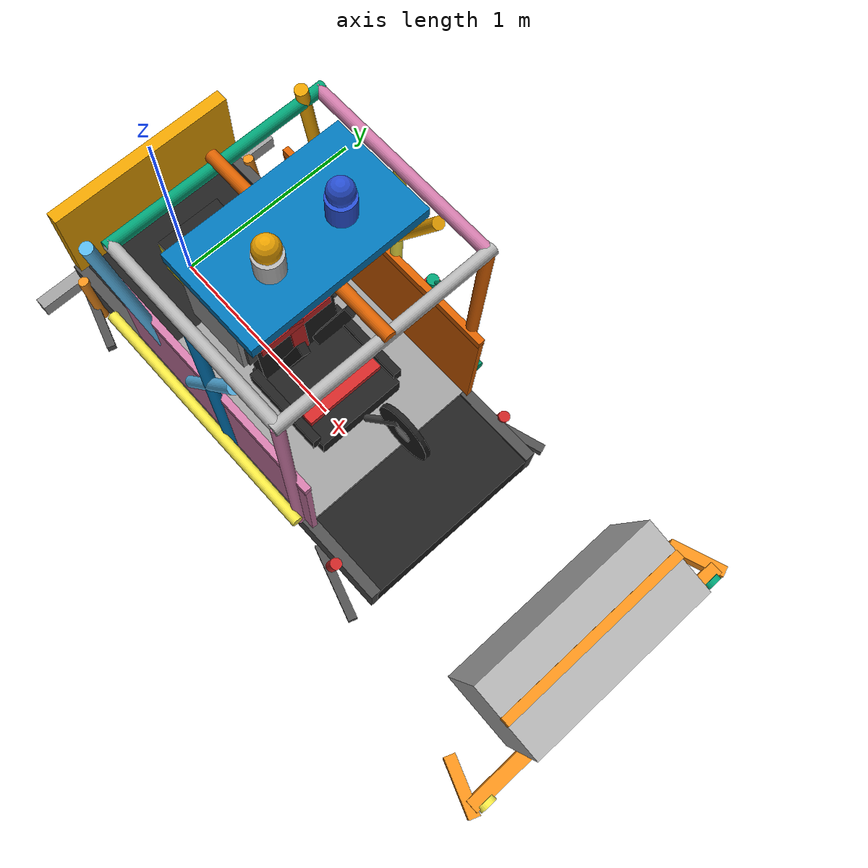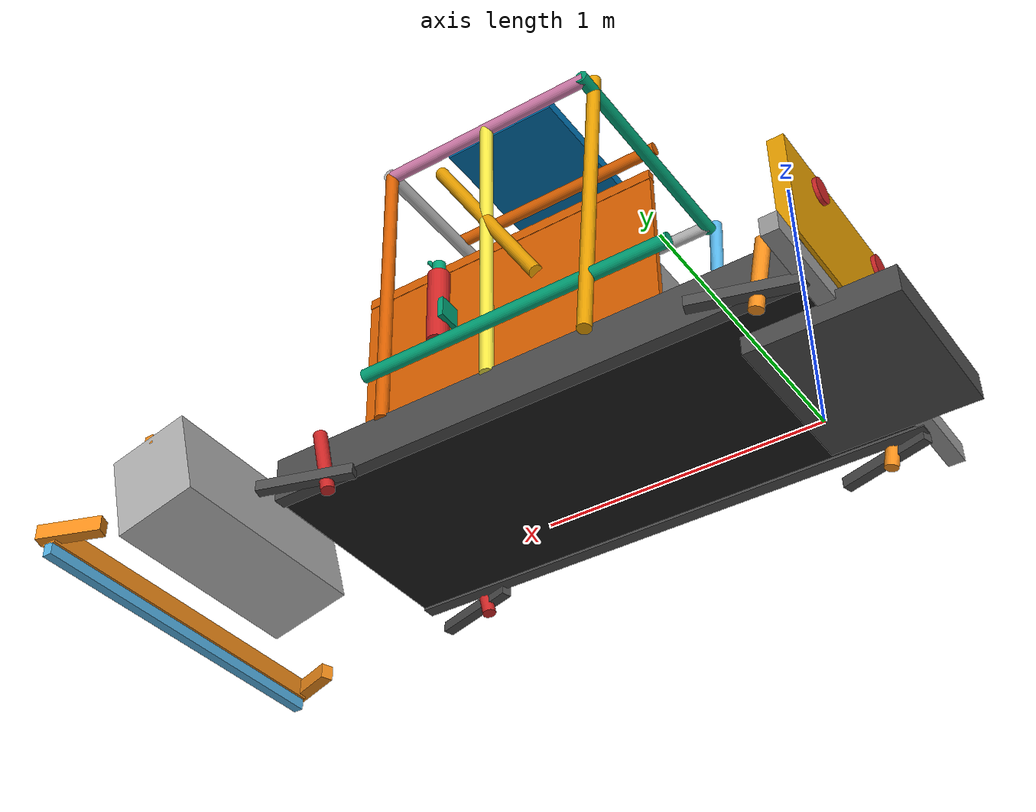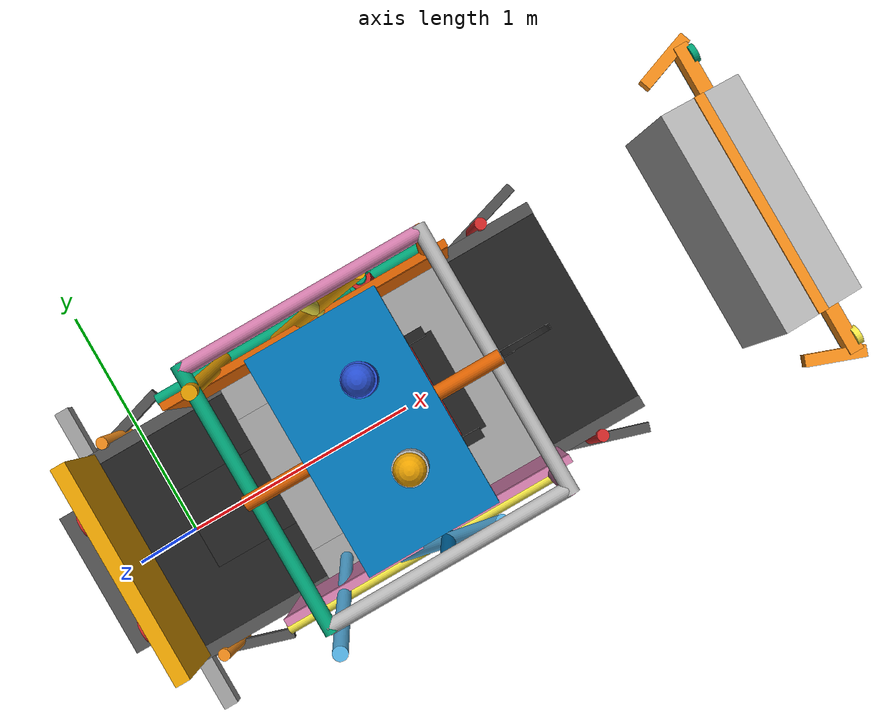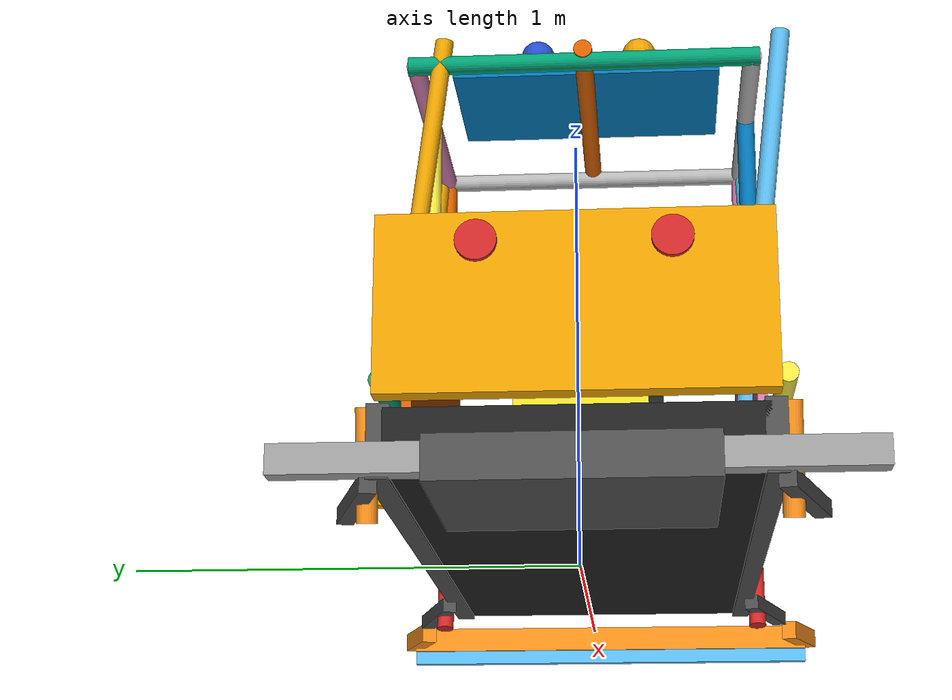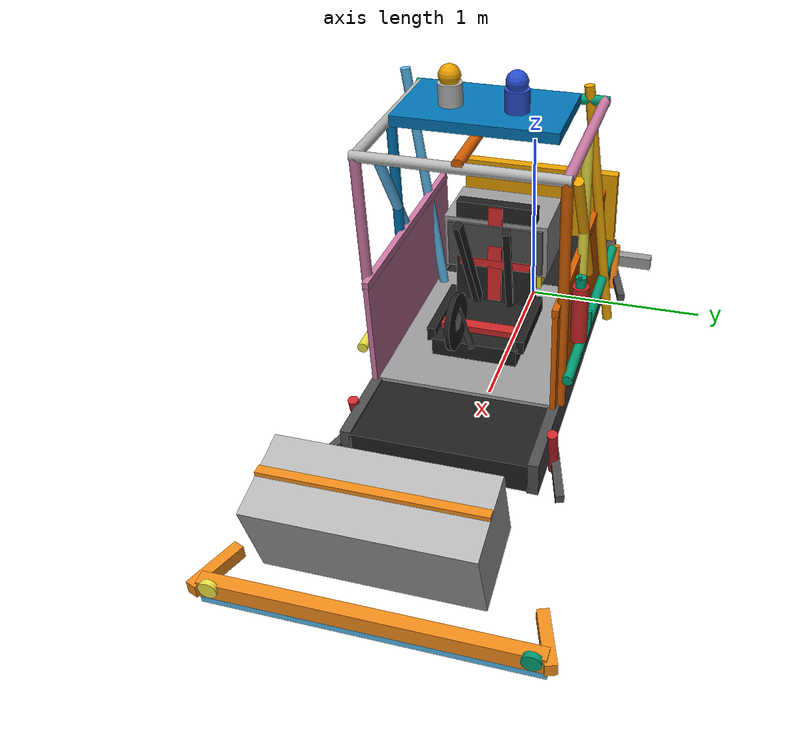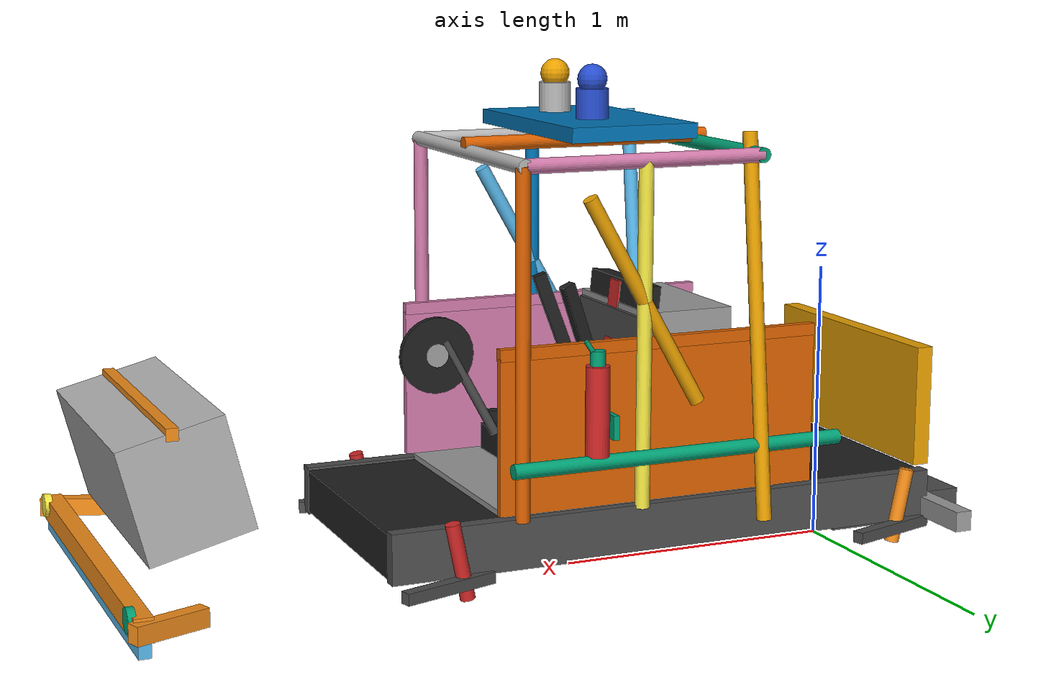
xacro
<?xml version="1.0"?>
<robot xmlns:xacro="http://www.ros.org/wiki/xacro" name="abaja_chassis">

  <!-- ======================================================================
    XACRO PROPERTIES
  ====================================================================== -->
  <xacro:property name="chassis_length" value="2.0"/>
  <xacro:property name="chassis_width"  value="0.85"/>
  <xacro:property name="chassis_height" value="0.15"/>
  <xacro:property name="chassis_mass"   value="80.0"/>
  <xacro:property name="ground_clearance" value="0.25"/>

  <xacro:property name="wheelbase"   value="1.65"/>
  <xacro:property name="track_width" value="1.25"/>

  <!-- Roll cage -->
  <xacro:property name="cage_tube_radius" value="0.025"/>
  <xacro:property name="cage_height"      value="1.15"/>

  <!-- Cockpit offset -->
  <xacro:property name="cockpit_offset_x" value="0.1"/>

  <!-- ======================================================================
    INERTIA MACROS
  ====================================================================== -->
  <xacro:macro name="box_inertia" params="mass x_dim y_dim z_dim">
    <inertial>
      <mass value="${mass}"/>
      <origin xyz="0 0 0" rpy="0 0 0"/>
      <inertia
        ixx="${(1.0/12.0) * mass * (y_dim*y_dim + z_dim*z_dim)}"
        ixy="0.0" ixz="0.0"
        iyy="${(1.0/12.0) * mass * (x_dim*x_dim + z_dim*z_dim)}"
        iyz="0.0"
        izz="${(1.0/12.0) * mass * (x_dim*x_dim + y_dim*y_dim)}"/>
    </inertial>
  </xacro:macro>

  <xacro:macro name="cylinder_inertia" params="mass radius length">
    <inertial>
      <mass value="${mass}"/>
      <origin xyz="0 0 0" rpy="0 0 0"/>
      <inertia
        ixx="${(1.0/12.0) * mass * (3*radius*radius + length*length)}"
        ixy="0.0" ixz="0.0"
        iyy="${(1.0/12.0) * mass * (3*radius*radius + length*length)}"
        iyz="0.0"
        izz="${(1.0/2.0) * mass * radius * radius}"/>
    </inertial>
  </xacro:macro>

  <xacro:macro name="sphere_inertia" params="mass radius">
    <inertial>
      <mass value="${mass}"/>
      <origin xyz="0 0 0" rpy="0 0 0"/>
      <inertia
        ixx="${(2.0/5.0) * mass * radius * radius}"
        ixy="0.0" ixz="0.0"
        iyy="${(2.0/5.0) * mass * radius * radius}"
        iyz="0.0"
        izz="${(2.0/5.0) * mass * radius * radius}"/>
    </inertial>
  </xacro:macro>

  <xacro:macro name="cage_tube" params="link_name tube_len tube_mass parent_link jnt_x jnt_y jnt_z jnt_r jnt_p jnt_yaw vis_r vis_p vis_yaw">
    <link name="${link_name}">
      <visual>
        <origin xyz="0 0 0" rpy="${vis_r} ${vis_p} ${vis_yaw}"/>
        <geometry><cylinder radius="${cage_tube_radius}" length="${tube_len}"/></geometry>
        <material name="Steel"/>
      </visual>
      <collision>
        <origin xyz="0 0 0" rpy="${vis_r} ${vis_p} ${vis_yaw}"/>
        <geometry><cylinder radius="${cage_tube_radius}" length="${tube_len}"/></geometry>
      </collision>
      <xacro:cylinder_inertia mass="${tube_mass}" radius="${cage_tube_radius}" length="${tube_len}"/>
    </link>
    <joint name="${link_name}_joint" type="fixed">
      <parent link="${parent_link}"/>
      <child  link="${link_name}"/>
      <origin xyz="${jnt_x} ${jnt_y} ${jnt_z}" rpy="${jnt_r} ${jnt_p} ${jnt_yaw}"/>
    </joint>
  </xacro:macro>

  <link name="dummy_root">
    <!-- Massless root link (KDL requirement) -->
  </link>

  <joint name="dummy_to_base" type="fixed">
    <parent link="dummy_root"/>
    <child  link="base_link"/>
    <origin xyz="0 0 0" rpy="0 0 0"/>
  </joint>

  <link name="base_link">
    <inertial>
      <mass value="0.001"/>
      <origin xyz="0 0 0" rpy="0 0 0"/>
      <inertia ixx="0.001" ixy="0" ixz="0" iyy="0.001" iyz="0" izz="0.001"/>
    </inertial>
  </link>

  <link name="base_footprint">
    <inertial>
      <mass value="0.001"/>
      <origin xyz="0 0 0" rpy="0 0 0"/>
      <inertia ixx="0.001" ixy="0" ixz="0" iyy="0.001" iyz="0" izz="0.001"/>
    </inertial>
  </link>

  <joint name="base_footprint_joint" type="fixed">
    <parent link="base_link"/>
    <child  link="base_footprint"/>
    <origin xyz="0 0 0" rpy="0 0 0"/>
  </joint>

  <link name="chassis_link">
    <!-- Main lower chassis tube frame (longitudinal rail) -->
    <visual>
      <origin xyz="${wheelbase/2} 0 0" rpy="0 0 0"/>
      <geometry><box size="${chassis_length} ${chassis_width} ${chassis_height}"/></geometry>
      <material name="Black"/>
    </visual>
    <!-- Left chassis rail (visual highlight) -->
    <visual>
      <origin xyz="${wheelbase/2} ${chassis_width/2 + 0.01} 0" rpy="0 0 0"/>
      <geometry><box size="${chassis_length} 0.05 ${chassis_height + 0.02}"/></geometry>
      <material name="DarkGrey"/>
    </visual>
    <!-- Right chassis rail -->
    <visual>
      <origin xyz="${wheelbase/2} -${chassis_width/2 + 0.01} 0" rpy="0 0 0"/>
      <geometry><box size="${chassis_length} 0.05 ${chassis_height + 0.02}"/></geometry>
      <material name="DarkGrey"/>
    </visual>
    <collision>
      <origin xyz="${wheelbase/2} 0 0" rpy="0 0 0"/>
      <geometry><box size="${chassis_length} ${chassis_width} ${chassis_height}"/></geometry>
    </collision>
    <xacro:box_inertia mass="${chassis_mass}" x_dim="${chassis_length}" y_dim="${chassis_width}" z_dim="${chassis_height}"/>
  </link>

  <joint name="base_to_chassis" type="fixed">
    <parent link="base_link"/>
    <child  link="chassis_link"/>
    <origin xyz="0 0 ${ground_clearance}" rpy="0 0 0"/>
  </joint>

  <!-- ======================================================================
    FLOOR PAN (preserved)
  ====================================================================== -->
  <link name="floor_pan_link">
    <visual>
      <origin xyz="0 0 0" rpy="0 0 0"/>
      <geometry><box size="1.0 ${chassis_width} 0.02"/></geometry>
      <material name="FloorGrey"/>
    </visual>
    <collision>
      <origin xyz="0 0 0" rpy="0 0 0"/>
      <geometry><box size="1.0 ${chassis_width} 0.02"/></geometry>
    </collision>
    <xacro:box_inertia mass="8.0" x_dim="1.0" y_dim="${chassis_width}" z_dim="0.02"/>
  </link>

  <joint name="chassis_to_floor" type="fixed">
    <parent link="chassis_link"/>
    <child  link="floor_pan_link"/>
    <origin xyz="${wheelbase/2 + 0.1} 0 ${chassis_height/2 + 0.01}" rpy="0 0 0"/>
  </joint>

  <!-- Left body panel - full cockpit height, team blue -->
  <link name="left_body_panel_link">
    <visual>
      <origin xyz="0 0 0" rpy="0 0 0"/>
      <geometry><box size="1.15 0.025 0.52"/></geometry>
      <material name="BodyPanel"/>
    </visual>
    <!-- Panel stripe accent (lighter blue strip along top) -->
    <visual>
      <origin xyz="0 0 0.27" rpy="0 0 0"/>
      <geometry><box size="1.15 0.03 0.04"/></geometry>
      <material name="FrontNose"/>
    </visual>
    <collision>
      <origin xyz="0 0 0" rpy="0 0 0"/>
      <geometry><box size="1.15 0.025 0.52"/></geometry>
    </collision>
    <xacro:box_inertia mass="3.5" x_dim="1.15" y_dim="0.025" z_dim="0.52"/>
  </link>

  <joint name="chassis_to_left_panel" type="fixed">
    <parent link="chassis_link"/>
    <child  link="left_body_panel_link"/>
    <origin xyz="${wheelbase/2 + 0.05} ${chassis_width/2 + 0.01} ${chassis_height/2 + 0.28}" rpy="0 0 0"/>
  </joint>

  <!-- Right body panel -->
  <link name="right_body_panel_link">
    <visual>
      <origin xyz="0 0 0" rpy="0 0 0"/>
      <geometry><box size="1.15 0.025 0.52"/></geometry>
      <material name="BodyPanel"/>
    </visual>
    <visual>
      <origin xyz="0 0 0.27" rpy="0 0 0"/>
      <geometry><box size="1.15 0.03 0.04"/></geometry>
      <material name="FrontNose"/>
    </visual>
    <collision>
      <origin xyz="0 0 0" rpy="0 0 0"/>
      <geometry><box size="1.15 0.025 0.52"/></geometry>
    </collision>
    <xacro:box_inertia mass="3.5" x_dim="1.15" y_dim="0.025" z_dim="0.52"/>
  </link>

  <joint name="chassis_to_right_panel" type="fixed">
    <parent link="chassis_link"/>
    <child  link="right_body_panel_link"/>
    <origin xyz="${wheelbase/2 + 0.05} -${chassis_width/2 + 0.01} ${chassis_height/2 + 0.28}" rpy="0 0 0"/>
  </joint>

  <link name="front_nose_link">
    <!-- Main angled nose plate -->
    <visual>
      <origin xyz="0 0 0" rpy="0 0.25 0"/>
      <geometry><box size="0.35 ${chassis_width + 0.05} 0.38"/></geometry>
      <material name="BodyPanel"/>
    </visual>
    <!-- Nose accent stripe (orange) -->
    <visual>
      <origin xyz="0.04 0 0.18" rpy="0 0 0"/>
      <geometry><box size="0.04 ${chassis_width + 0.05} 0.04"/></geometry>
      <material name="BumperOrange"/>
    </visual>
    <collision>
      <origin xyz="0 0 0" rpy="0 0.25 0"/>
      <geometry><box size="0.35 ${chassis_width + 0.05} 0.38"/></geometry>
    </collision>
    <xacro:box_inertia mass="2.0" x_dim="0.35" y_dim="${chassis_width + 0.05}" z_dim="0.38"/>
  </link>

  <joint name="chassis_to_front_nose" type="fixed">
    <parent link="chassis_link"/>
    <child  link="front_nose_link"/>
    <origin xyz="${wheelbase + 0.82} 0 ${chassis_height/2 + 0.22}" rpy="0 0 0"/>
  </joint>

  <!-- ======================================================================
    REAR BODY PANEL / REAR GUARD
  ====================================================================== -->
  <link name="rear_guard_link">
    <visual>
      <origin xyz="0 0 0" rpy="0 0 0"/>
      <geometry><box size="0.06 ${chassis_width + 0.05} 0.42"/></geometry>
      <material name="RearGuard"/>
    </visual>
    <collision>
      <origin xyz="0 0 0" rpy="0 0 0"/>
      <geometry><box size="0.06 ${chassis_width + 0.05} 0.42"/></geometry>
    </collision>
    <xacro:box_inertia mass="2.0" x_dim="0.06" y_dim="${chassis_width + 0.05}" z_dim="0.42"/>
  </link>

  <joint name="chassis_to_rear_guard" type="fixed">
    <parent link="chassis_link"/>
    <child  link="rear_guard_link"/>
    <origin xyz="-0.15 0 ${chassis_height/2 + 0.24}" rpy="0 0 0"/>
  </joint>

  <link name="front_bumper_link">
    <!-- Main bumper bar -->
    <visual>
      <origin xyz="0 0 0" rpy="0 0 0"/>
      <geometry><box size="0.06 ${track_width + 0.15} 0.08"/></geometry>
      <material name="BumperOrange"/>
    </visual>
    <!-- Left bumper horn -->
    <visual>
      <origin xyz="-0.08 ${track_width/2 + 0.05} 0" rpy="0 0 0.35"/>
      <geometry><box size="0.25 0.05 0.06"/></geometry>
      <material name="BumperOrange"/>
    </visual>
    <!-- Right bumper horn -->
    <visual>
      <origin xyz="-0.08 -${track_width/2 + 0.05} 0" rpy="0 0 -0.35"/>
      <geometry><box size="0.25 0.05 0.06"/></geometry>
      <material name="BumperOrange"/>
    </visual>
    <!-- Bumper skid plate (lower) -->
    <visual>
      <origin xyz="0 0 -0.06" rpy="0 0 0"/>
      <geometry><box size="0.04 ${track_width + 0.15} 0.05"/></geometry>
      <material name="Steel"/>
    </visual>
    <collision>
      <origin xyz="0 0 0" rpy="0 0 0"/>
      <geometry><box size="0.08 ${track_width + 0.15} 0.08"/></geometry>
    </collision>
    <xacro:box_inertia mass="3.0" x_dim="0.08" y_dim="${track_width + 0.15}" z_dim="0.08"/>
  </link>

  <joint name="chassis_to_front_bumper" type="fixed">
    <parent link="chassis_link"/>
    <child  link="front_bumper_link"/>
    <origin xyz="${wheelbase + 1.02} 0 ${-chassis_height/2 + 0.04}" rpy="0 0 0"/>
  </joint>

  <!-- Front indicator lights (white, mounted on bumper corners) -->
  <link name="front_left_light_link">
    <visual>
      <origin xyz="0 0 0" rpy="0 1.5708 0"/>
      <geometry><cylinder radius="0.04" length="0.025"/></geometry>
      <material name="FrontLight"/>
    </visual>
    <collision>
      <origin xyz="0 0 0" rpy="0 1.5708 0"/>
      <geometry><cylinder radius="0.04" length="0.025"/></geometry>
    </collision>
    <xacro:cylinder_inertia mass="0.05" radius="0.04" length="0.025"/>
  </link>

  <joint name="bumper_to_fl_light" type="fixed">
    <parent link="front_bumper_link"/>
    <child  link="front_left_light_link"/>
    <origin xyz="0.03 ${track_width/2 + 0.02} 0.02" rpy="0 0 0"/>
  </joint>

  <link name="front_right_light_link">
    <visual>
      <origin xyz="0 0 0" rpy="0 1.5708 0"/>
      <geometry><cylinder radius="0.04" length="0.025"/></geometry>
      <material name="FrontLight"/>
    </visual>
    <collision>
      <origin xyz="0 0 0" rpy="0 1.5708 0"/>
      <geometry><cylinder radius="0.04" length="0.025"/></geometry>
    </collision>
    <xacro:cylinder_inertia mass="0.05" radius="0.04" length="0.025"/>
  </link>

  <joint name="bumper_to_fr_light" type="fixed">
    <parent link="front_bumper_link"/>
    <child  link="front_right_light_link"/>
    <origin xyz="0.03 -${track_width/2 + 0.02} 0.02" rpy="0 0 0"/>
  </joint>

  <!-- ======================================================================
    REAR BUMPER
  ====================================================================== -->
  <link name="rear_bumper_link">
    <!-- Main rear bumper bar -->
    <visual>
      <origin xyz="0 0 0" rpy="0 0 0"/>
      <geometry><box size="0.06 ${track_width + 0.1} 0.07"/></geometry>
      <material name="BumperGrey"/>
    </visual>
    <!-- Rear tow hook visual -->
    <visual>
      <origin xyz="-0.05 0 -0.04" rpy="0 0 0"/>
      <geometry><box size="0.08 0.04 0.04"/></geometry>
      <material name="Steel"/>
    </visual>
    <collision>
      <origin xyz="0 0 0" rpy="0 0 0"/>
      <geometry><box size="0.06 ${track_width + 0.1} 0.07"/></geometry>
    </collision>
    <xacro:box_inertia mass="2.5" x_dim="0.06" y_dim="${track_width + 0.1}" z_dim="0.07"/>
  </link>

  <joint name="chassis_to_rear_bumper" type="fixed">
    <parent link="chassis_link"/>
    <child  link="rear_bumper_link"/>
    <origin xyz="-0.18 0 ${-chassis_height/2 + 0.03}" rpy="0 0 0"/>
  </joint>

  <!-- ── FRONT HOOP ─────────────────────────────────────────── -->
  <!-- Front hoop: left pillar (cylinder, vertical) -->
  <xacro:cage_tube
    link_name="roll_cage_front_left_upright"
    tube_len="${cage_height}"
    tube_mass="2.0"
    parent_link="chassis_link"
    jnt_x="${wheelbase/2 + 0.55}" jnt_y="${chassis_width/2 + 0.03}" jnt_z="${chassis_height/2 + cage_height/2}"
    jnt_r="0" jnt_p="0" jnt_yaw="0"
    vis_r="0" vis_p="0" vis_yaw="0"/>

  <!-- Front hoop: right pillar -->
  <xacro:cage_tube
    link_name="roll_cage_front_right_upright"
    tube_len="${cage_height}"
    tube_mass="2.0"
    parent_link="chassis_link"
    jnt_x="${wheelbase/2 + 0.55}" jnt_y="-${chassis_width/2 + 0.03}" jnt_z="${chassis_height/2 + cage_height/2}"
    jnt_r="0" jnt_p="0" jnt_yaw="0"
    vis_r="0" vis_p="0" vis_yaw="0"/>

  <!-- Front hoop: top cross tube (horizontal, Y direction) -->
  <link name="roll_cage_front_hoop">
    <visual>
      <origin xyz="0 0 0" rpy="${pi/2} 0 0"/>
      <geometry><cylinder radius="${cage_tube_radius}" length="${chassis_width + 0.1}"/></geometry>
      <material name="Steel"/>
    </visual>
    <collision>
      <origin xyz="0 0 0" rpy="${pi/2} 0 0"/>
      <geometry><cylinder radius="${cage_tube_radius}" length="${chassis_width + 0.1}"/></geometry>
    </collision>
    <xacro:cylinder_inertia mass="1.5" radius="${cage_tube_radius}" length="${chassis_width + 0.1}"/>
  </link>
  <joint name="chassis_to_front_hoop" type="fixed">
    <parent link="chassis_link"/>
    <child  link="roll_cage_front_hoop"/>
    <origin xyz="${wheelbase/2 + 0.55} 0 ${chassis_height/2 + cage_height}" rpy="0 0 0"/>
  </joint>

  <!-- ── REAR HOOP ──────────────────────────────────────────── -->
  <!-- Rear hoop: left upright (with slight outward lean for BAJA style) -->
  <link name="roll_cage_left_rear_pillar">
    <visual>
      <origin xyz="0 0 0" rpy="0.12 0 0"/>
      <geometry><cylinder radius="${cage_tube_radius}" length="${cage_height + 0.15}"/></geometry>
      <material name="Steel"/>
    </visual>
    <collision>
      <origin xyz="0 0 0" rpy="0.12 0 0"/>
      <geometry><cylinder radius="${cage_tube_radius}" length="${cage_height + 0.15}"/></geometry>
    </collision>
    <xacro:cylinder_inertia mass="2.5" radius="${cage_tube_radius}" length="${cage_height + 0.15}"/>
  </link>
  <joint name="chassis_to_left_rear_pillar" type="fixed">
    <parent link="chassis_link"/>
    <child  link="roll_cage_left_rear_pillar"/>
    <origin xyz="${wheelbase/2 - 0.30} ${chassis_width/2 + 0.03} ${chassis_height/2 + cage_height/2}" rpy="0 0 0"/>
  </joint>

  <!-- Rear hoop: right upright -->
  <link name="roll_cage_right_rear_pillar">
    <visual>
      <origin xyz="0 0 0" rpy="0.12 0 0"/>
      <geometry><cylinder radius="${cage_tube_radius}" length="${cage_height + 0.15}"/></geometry>
      <material name="Steel"/>
    </visual>
    <collision>
      <origin xyz="0 0 0" rpy="0.12 0 0"/>
      <geometry><cylinder radius="${cage_tube_radius}" length="${cage_height + 0.15}"/></geometry>
    </collision>
    <xacro:cylinder_inertia mass="2.5" radius="${cage_tube_radius}" length="${cage_height + 0.15}"/>
  </link>
  <joint name="chassis_to_right_rear_pillar" type="fixed">
    <parent link="chassis_link"/>
    <child  link="roll_cage_right_rear_pillar"/>
    <origin xyz="${wheelbase/2 - 0.30} -${chassis_width/2 + 0.03} ${chassis_height/2 + cage_height/2}" rpy="0 0 0"/>
  </joint>

  <!-- Rear hoop: top cross bar -->
  <link name="roll_cage_rear_hoop">
    <visual>
      <origin xyz="0 0 0" rpy="${pi/2} 0 0"/>
      <geometry><cylinder radius="${cage_tube_radius}" length="${chassis_width + 0.1}"/></geometry>
      <material name="Steel"/>
    </visual>
    <collision>
      <origin xyz="0 0 0" rpy="${pi/2} 0 0"/>
      <geometry><cylinder radius="${cage_tube_radius}" length="${chassis_width + 0.1}"/></geometry>
    </collision>
    <xacro:cylinder_inertia mass="1.5" radius="${cage_tube_radius}" length="${chassis_width + 0.1}"/>
  </link>
  <joint name="chassis_to_rear_hoop" type="fixed">
    <parent link="chassis_link"/>
    <child  link="roll_cage_rear_hoop"/>
    <origin xyz="${wheelbase/2 - 0.30} 0 ${chassis_height/2 + cage_height}" rpy="0 0 0"/>
  </joint>

  <!-- ── A-PILLAR (front cage uprights connecting front hoop to chassis sides) -->
  <!-- Preserved names from original for Gazebo/abaja_buggy.urdf.xacro compatibility -->
  <link name="roll_cage_left_pillar">
    <visual>
      <origin xyz="0 0 0" rpy="0 0 0"/>
      <geometry><cylinder radius="${cage_tube_radius}" length="${cage_height}"/></geometry>
      <material name="Steel"/>
    </visual>
    <collision>
      <origin xyz="0 0 0" rpy="0 0 0"/>
      <geometry><cylinder radius="${cage_tube_radius}" length="${cage_height}"/></geometry>
    </collision>
    <xacro:cylinder_inertia mass="2.0" radius="${cage_tube_radius}" length="${cage_height}"/>
  </link>
  <joint name="chassis_to_left_pillar" type="fixed">
    <parent link="chassis_link"/>
    <child  link="roll_cage_left_pillar"/>
    <origin xyz="${wheelbase/2 + 0.12} ${chassis_width/2 + 0.03} ${chassis_height/2 + cage_height/2}" rpy="0 0 0"/>
  </joint>

  <link name="roll_cage_right_pillar">
    <visual>
      <origin xyz="0 0 0" rpy="0 0 0"/>
      <geometry><cylinder radius="${cage_tube_radius}" length="${cage_height}"/></geometry>
      <material name="Steel"/>
    </visual>
    <collision>
      <origin xyz="0 0 0" rpy="0 0 0"/>
      <geometry><cylinder radius="${cage_tube_radius}" length="${cage_height}"/></geometry>
    </collision>
    <xacro:cylinder_inertia mass="2.0" radius="${cage_tube_radius}" length="${cage_height}"/>
  </link>
  <joint name="chassis_to_right_pillar" type="fixed">
    <parent link="chassis_link"/>
    <child  link="roll_cage_right_pillar"/>
    <origin xyz="${wheelbase/2 + 0.12} -${chassis_width/2 + 0.03} ${chassis_height/2 + cage_height/2}" rpy="0 0 0"/>
  </joint>

  <!-- ── TOP CONNECTING BAR (front hoop to rear hoop, left and right) ── -->
  <link name="roll_cage_top_bar">
    <visual>
      <origin xyz="0 0 0" rpy="0 ${pi/2} 0"/>
      <geometry><cylinder radius="${cage_tube_radius}" length="0.90"/></geometry>
      <material name="Steel"/>
    </visual>
    <collision>
      <origin xyz="0 0 0" rpy="0 ${pi/2} 0"/>
      <geometry><cylinder radius="${cage_tube_radius}" length="0.90"/></geometry>
    </collision>
    <xacro:cylinder_inertia mass="1.5" radius="${cage_tube_radius}" length="0.90"/>
  </link>
  <joint name="chassis_to_top_bar" type="fixed">
    <parent link="chassis_link"/>
    <child  link="roll_cage_top_bar"/>
    <origin xyz="${wheelbase/2 + 0.12} 0 ${chassis_height/2 + cage_height + 0.025}" rpy="0 0 0"/>
  </joint>

  <!-- Top left longtudinal bar -->
  <link name="roll_cage_left_side_bar">
    <visual>
      <origin xyz="0 0 0" rpy="0 ${pi/2} 0"/>
      <geometry><cylinder radius="${cage_tube_radius}" length="0.85"/></geometry>
      <material name="Steel"/>
    </visual>
    <collision>
      <origin xyz="0 0 0" rpy="0 ${pi/2} 0"/>
      <geometry><cylinder radius="${cage_tube_radius}" length="0.85"/></geometry>
    </collision>
    <xacro:cylinder_inertia mass="1.5" radius="${cage_tube_radius}" length="0.85"/>
  </link>
  <joint name="chassis_to_left_side_bar" type="fixed">
    <parent link="chassis_link"/>
    <child  link="roll_cage_left_side_bar"/>
    <origin xyz="${wheelbase/2 + 0.12} ${chassis_width/2 + 0.03} ${chassis_height/2 + cage_height}" rpy="0 0 0"/>
  </joint>

  <!-- Top right longitudinal bar -->
  <link name="roll_cage_right_side_bar">
    <visual>
      <origin xyz="0 0 0" rpy="0 ${pi/2} 0"/>
      <geometry><cylinder radius="${cage_tube_radius}" length="0.85"/></geometry>
      <material name="Steel"/>
    </visual>
    <collision>
      <origin xyz="0 0 0" rpy="0 ${pi/2} 0"/>
      <geometry><cylinder radius="${cage_tube_radius}" length="0.85"/></geometry>
    </collision>
    <xacro:cylinder_inertia mass="1.5" radius="${cage_tube_radius}" length="0.85"/>
  </link>
  <joint name="chassis_to_right_side_bar" type="fixed">
    <parent link="chassis_link"/>
    <child  link="roll_cage_right_side_bar"/>
    <origin xyz="${wheelbase/2 + 0.12} -${chassis_width/2 + 0.03} ${chassis_height/2 + cage_height}" rpy="0 0 0"/>
  </joint>

  <!-- ── DIAGONAL BRACES (X-brace pattern at rear of roll cage) ── -->
  <xacro:cage_tube
    link_name="roll_cage_diag_left"
    tube_len="0.80"
    tube_mass="1.0"
    parent_link="chassis_link"
    jnt_x="${wheelbase/2 + 0.12}" jnt_y="${chassis_width/2 + 0.03}" jnt_z="${chassis_height/2 + cage_height * 0.60}"
    jnt_r="0" jnt_p="0" jnt_yaw="0"
    vis_r="0" vis_p="0.52" vis_yaw="0"/>

  <xacro:cage_tube
    link_name="roll_cage_diag_right"
    tube_len="0.80"
    tube_mass="1.0"
    parent_link="chassis_link"
    jnt_x="${wheelbase/2 + 0.12}" jnt_y="-${chassis_width/2 + 0.03}" jnt_z="${chassis_height/2 + cage_height * 0.60}"
    jnt_r="0" jnt_p="0" jnt_yaw="0"
    vis_r="0" vis_p="0.52" vis_yaw="0"/>

  <!-- ── SIDE PROTECTION BARS (low horizontal tube along body sides) ── -->
  <xacro:cage_tube
    link_name="side_protection_left"
    tube_len="1.20"
    tube_mass="2.0"
    parent_link="chassis_link"
    jnt_x="${wheelbase/2}" jnt_y="${chassis_width/2 + 0.07}" jnt_z="${chassis_height/2 + 0.18}"
    jnt_r="0" jnt_p="0" jnt_yaw="0"
    vis_r="0" vis_p="${pi/2}" vis_yaw="0"/>

  <xacro:cage_tube
    link_name="side_protection_right"
    tube_len="1.20"
    tube_mass="2.0"
    parent_link="chassis_link"
    jnt_x="${wheelbase/2}" jnt_y="-${chassis_width/2 + 0.07}" jnt_z="${chassis_height/2 + 0.18}"
    jnt_r="0" jnt_p="0" jnt_yaw="0"
    vis_r="0" vis_p="${pi/2}" vis_yaw="0"/>

  <!-- ======================================================================
    SENSOR MOUNT BAR (preserved name/joint)
  ====================================================================== -->
  <link name="sensor_mount_bar">
    <visual>
      <origin xyz="0 0 0" rpy="0 0 0"/>
      <geometry><box size="0.45 0.75 0.05"/></geometry>
      <material name="SensorBar"/>
    </visual>
    <!-- Mounting rail left -->
    <visual>
      <origin xyz="0 0.30 0" rpy="0 0 0"/>
      <geometry><box size="0.42 0.04 0.03"/></geometry>
      <material name="DarkGrey"/>
    </visual>
    <!-- Mounting rail right -->
    <visual>
      <origin xyz="0 -0.30 0" rpy="0 0 0"/>
      <geometry><box size="0.42 0.04 0.03"/></geometry>
      <material name="DarkGrey"/>
    </visual>
    <collision>
      <origin xyz="0 0 0" rpy="0 0 0"/>
      <geometry><box size="0.45 0.75 0.05"/></geometry>
    </collision>
    <xacro:box_inertia mass="2.0" x_dim="0.45" y_dim="0.75" z_dim="0.05"/>
  </link>

  <joint name="cage_to_sensor_bar" type="fixed">
    <parent link="chassis_link"/>
    <child  link="sensor_mount_bar"/>
    <origin xyz="${wheelbase/2 + 0.12} 0 ${chassis_height/2 + cage_height + 0.08}" rpy="0 0 0"/>
  </joint>

  <!-- ======================================================================
    BEACONS (preserved names and joints)
  ====================================================================== -->
  <!-- Blue ASAL beacon -->
  <link name="asal_beacon_link">
    <visual>
      <origin xyz="0 0 0" rpy="0 0 0"/>
      <geometry><cylinder radius="0.055" length="0.10"/></geometry>
      <material name="Blue"/>
    </visual>
    <collision>
      <origin xyz="0 0 0" rpy="0 0 0"/>
      <geometry><cylinder radius="0.055" length="0.10"/></geometry>
    </collision>
    <xacro:cylinder_inertia mass="0.3" radius="0.055" length="0.10"/>
  </link>

  <link name="asal_beacon_dome">
    <visual>
      <origin xyz="0 0 0" rpy="0 0 0"/>
      <geometry><sphere radius="0.050"/></geometry>
      <material name="Blue"/>
    </visual>
    <collision>
      <origin xyz="0 0 0" rpy="0 0 0"/>
      <geometry><sphere radius="0.050"/></geometry>
    </collision>
    <xacro:sphere_inertia mass="0.1" radius="0.050"/>
  </link>

  <joint name="sensor_bar_to_asal_beacon" type="fixed">
    <parent link="sensor_mount_bar"/>
    <child  link="asal_beacon_link"/>
    <origin xyz="0.05 0.15 0.08" rpy="0 0 0"/>
  </joint>

  <joint name="asal_beacon_to_dome" type="fixed">
    <parent link="asal_beacon_link"/>
    <child  link="asal_beacon_dome"/>
    <origin xyz="0 0 0.08" rpy="0 0 0"/>
  </joint>

  <!-- Orange warning beacon -->
  <link name="warning_beacon_link">
    <visual>
      <origin xyz="0 0 0" rpy="0 0 0"/>
      <geometry><cylinder radius="0.055" length="0.10"/></geometry>
      <material name="Amber"/>
    </visual>
    <collision>
      <origin xyz="0 0 0" rpy="0 0 0"/>
      <geometry><cylinder radius="0.055" length="0.10"/></geometry>
    </collision>
    <xacro:cylinder_inertia mass="0.3" radius="0.055" length="0.10"/>
  </link>

  <link name="warning_beacon_dome">
    <visual>
      <origin xyz="0 0 0" rpy="0 0 0"/>
      <geometry><sphere radius="0.050"/></geometry>
      <material name="Amber"/>
    </visual>
    <collision>
      <origin xyz="0 0 0" rpy="0 0 0"/>
      <geometry><sphere radius="0.050"/></geometry>
    </collision>
    <xacro:sphere_inertia mass="0.1" radius="0.050"/>
  </link>

  <joint name="sensor_bar_to_warning_beacon" type="fixed">
    <parent link="sensor_mount_bar"/>
    <child  link="warning_beacon_link"/>
    <origin xyz="0.05 -0.15 0.08" rpy="0 0 0"/>
  </joint>

  <joint name="warning_beacon_to_dome" type="fixed">
    <parent link="warning_beacon_link"/>
    <child  link="warning_beacon_dome"/>
    <origin xyz="0 0 0.08" rpy="0 0 0"/>
  </joint>

  <!-- ======================================================================
    SEAT - Preserved names
  ====================================================================== -->
  <link name="seat_link">
    <!-- Seat base cushion -->
    <visual>
      <origin xyz="0 0 0" rpy="0 0 0"/>
      <geometry><box size="0.45 0.42 0.09"/></geometry>
      <material name="SeatBlack"/>
    </visual>
    <!-- Seat side bolster left -->
    <visual>
      <origin xyz="0 0.22 0.05" rpy="0 0 0"/>
      <geometry><box size="0.40 0.04 0.07"/></geometry>
      <material name="SeatBlack"/>
    </visual>
    <!-- Seat side bolster right -->
    <visual>
      <origin xyz="0 -0.22 0.05" rpy="0 0 0"/>
      <geometry><box size="0.40 0.04 0.07"/></geometry>
      <material name="SeatBlack"/>
    </visual>
    <collision>
      <origin xyz="0 0 0" rpy="0 0 0"/>
      <geometry><box size="0.45 0.42 0.09"/></geometry>
    </collision>
    <xacro:box_inertia mass="3.0" x_dim="0.45" y_dim="0.42" z_dim="0.09"/>
  </link>

  <!-- Seat backrest -->
  <link name="seat_backrest_link">
    <!-- Main backrest -->
    <visual>
      <origin xyz="0 0 0" rpy="0 0 0"/>
      <geometry><box size="0.07 0.40 0.52"/></geometry>
      <material name="SeatBlack"/>
    </visual>
    <!-- Red harness vertical strap -->
    <visual>
      <origin xyz="0.02 0 0" rpy="0 0 0"/>
      <geometry><box size="0.045 0.07 0.50"/></geometry>
      <material name="SeatRed"/>
    </visual>
    <!-- Red harness horizontal strap -->
    <visual>
      <origin xyz="0.02 0 -0.05" rpy="0 0 0"/>
      <geometry><box size="0.045 0.36 0.04"/></geometry>
      <material name="SeatRed"/>
    </visual>
    <collision>
      <origin xyz="0 0 0" rpy="0 0 0"/>
      <geometry><box size="0.07 0.40 0.52"/></geometry>
    </collision>
    <xacro:box_inertia mass="2.0" x_dim="0.07" y_dim="0.40" z_dim="0.52"/>
  </link>

  <joint name="chassis_to_seat" type="fixed">
    <parent link="chassis_link"/>
    <child  link="seat_link"/>
    <origin xyz="${wheelbase/2 + 0.20} 0 ${chassis_height/2 + 0.12}" rpy="0 0 0"/>
  </joint>

  <joint name="seat_to_backrest" type="fixed">
    <parent link="seat_link"/>
    <child  link="seat_backrest_link"/>
    <origin xyz="-0.21 0 0.31" rpy="0 -0.10 0"/>
  </joint>

  <!-- ======================================================================
    STEERING COLUMN (preserved)
  ====================================================================== -->
  <link name="steering_column_link">
    <visual>
      <origin xyz="0 0 0" rpy="0 0.5 0"/>
      <geometry><cylinder radius="0.016" length="0.38"/></geometry>
      <material name="DarkGrey"/>
    </visual>
    <collision>
      <origin xyz="0 0 0" rpy="0 0.5 0"/>
      <geometry><cylinder radius="0.016" length="0.38"/></geometry>
    </collision>
    <xacro:cylinder_inertia mass="0.5" radius="0.016" length="0.38"/>
  </link>

  <link name="steering_wheel_link">
    <!-- Outer ring -->
    <visual>
      <origin xyz="0 0 0" rpy="${pi/2} 0 0"/>
      <geometry><cylinder radius="0.13" length="0.022"/></geometry>
      <material name="SteeringBlack"/>
    </visual>
    <!-- Centre hub -->
    <visual>
      <origin xyz="0 0 0" rpy="${pi/2} 0 0"/>
      <geometry><cylinder radius="0.040" length="0.024"/></geometry>
      <material name="Grey"/>
    </visual>
    <collision>
      <origin xyz="0 0 0" rpy="${pi/2} 0 0"/>
      <geometry><cylinder radius="0.13" length="0.022"/></geometry>
    </collision>
    <xacro:cylinder_inertia mass="0.8" radius="0.13" length="0.022"/>
  </link>

  <joint name="chassis_to_steering_column" type="fixed">
    <parent link="chassis_link"/>
    <child  link="steering_column_link"/>
    <origin xyz="${wheelbase/2 + 0.55} 0 ${chassis_height/2 + 0.35}" rpy="0 0 0"/>
  </joint>

  <joint name="column_to_wheel" type="fixed">
    <parent link="steering_column_link"/>
    <child  link="steering_wheel_link"/>
    <origin xyz="0.12 0 0.12" rpy="0 0.5 0"/>
  </joint>

  <!-- ======================================================================
    BATTERY BOX (preserved name)
  ====================================================================== -->
  <link name="battery_box_link">
    <!-- Main box -->
    <visual>
      <origin xyz="0 0 0" rpy="0 0 0"/>
      <geometry><box size="0.38 0.32 0.22"/></geometry>
      <material name="BatteryYellow"/>
    </visual>
    <!-- Hazard stripe (black alternating) -->
    <visual>
      <origin xyz="0 0 0.115" rpy="0 0 0"/>
      <geometry><box size="0.38 0.32 0.02"/></geometry>
      <material name="Black"/>
    </visual>
    <!-- Terminal block -->
    <visual>
      <origin xyz="0.20 0 0.02" rpy="0 0 0"/>
      <geometry><box size="0.04 0.10 0.06"/></geometry>
      <material name="Grey"/>
    </visual>
    <collision>
      <origin xyz="0 0 0" rpy="0 0 0"/>
      <geometry><box size="0.38 0.32 0.22"/></geometry>
    </collision>
    <xacro:box_inertia mass="25.0" x_dim="0.38" y_dim="0.32" z_dim="0.22"/>
  </link>

  <joint name="chassis_to_battery" type="fixed">
    <parent link="chassis_link"/>
    <child  link="battery_box_link"/>
    <origin xyz="${wheelbase/2 - 0.50} 0 ${chassis_height/2 + 0.16}" rpy="0 0 0"/>
  </joint>

  <!-- ======================================================================
    ELECTRONICS BOX (preserved name)
  ====================================================================== -->
  <link name="electronics_box_link">
    <!-- Main enclosure -->
    <visual>
      <origin xyz="0 0 0" rpy="0 0 0"/>
      <geometry><box size="0.32 0.52 0.28"/></geometry>
      <material name="ElectronicsGrey"/>
    </visual>
    <!-- Ventilation grille visual (thin panel on front face) -->
    <visual>
      <origin xyz="0.17 0 0" rpy="0 0 0"/>
      <geometry><box size="0.015 0.48 0.24"/></geometry>
      <material name="DarkGrey"/>
    </visual>
    <collision>
      <origin xyz="0 0 0" rpy="0 0 0"/>
      <geometry><box size="0.32 0.52 0.28"/></geometry>
    </collision>
    <xacro:box_inertia mass="10.0" x_dim="0.32" y_dim="0.52" z_dim="0.28"/>
  </link>

  <joint name="chassis_to_electronics" type="fixed">
    <parent link="chassis_link"/>
    <child  link="electronics_box_link"/>
    <origin xyz="${wheelbase/2 - 0.15} 0 ${chassis_height/2 + 0.47}" rpy="0 0 0"/>
  </joint>

  <link name="left_tail_light">
    <visual>
      <origin xyz="0 0 0" rpy="0 ${pi/2} 0"/>
      <geometry><cylinder radius="0.048" length="0.03"/></geometry>
      <material name="TailRed"/>
    </visual>
    <collision>
      <origin xyz="0 0 0" rpy="0 ${pi/2} 0"/>
      <geometry><cylinder radius="0.048" length="0.03"/></geometry>
    </collision>
    <xacro:cylinder_inertia mass="0.1" radius="0.048" length="0.03"/>
  </link>

  <link name="right_tail_light">
    <visual>
      <origin xyz="0 0 0" rpy="0 ${pi/2} 0"/>
      <geometry><cylinder radius="0.048" length="0.03"/></geometry>
      <material name="TailRed"/>
    </visual>
    <collision>
      <origin xyz="0 0 0" rpy="0 ${pi/2} 0"/>
      <geometry><cylinder radius="0.048" length="0.03"/></geometry>
    </collision>
    <xacro:cylinder_inertia mass="0.1" radius="0.048" length="0.03"/>
  </link>

  <!-- Tail lights on rear guard face -->
  <joint name="chassis_to_left_tail_light" type="fixed">
    <parent link="chassis_link"/>
    <child  link="left_tail_light"/>
    <origin xyz="-0.18 0.22 ${chassis_height/2 + 0.38}" rpy="0 0 0"/>
  </joint>

  <joint name="chassis_to_right_tail_light" type="fixed">
    <parent link="chassis_link"/>
    <child  link="right_tail_light"/>
    <origin xyz="-0.18 -0.22 ${chassis_height/2 + 0.38}" rpy="0 0 0"/>
  </joint>

  <!-- Front left suspension arm -->
  <link name="front_left_suspension_arm">
    <visual>
      <origin xyz="0 0 0" rpy="0 0 0.3"/>
      <geometry><box size="0.35 0.04 0.04"/></geometry>
      <material name="DarkGrey"/>
    </visual>
    <collision>
      <origin xyz="0 0 0" rpy="0 0 0.3"/>
      <geometry><box size="0.35 0.04 0.04"/></geometry>
    </collision>
    <xacro:box_inertia mass="1.5" x_dim="0.35" y_dim="0.04" z_dim="0.04"/>
  </link>
  <joint name="chassis_to_fl_suspension" type="fixed">
    <parent link="chassis_link"/>
    <child  link="front_left_suspension_arm"/>
    <origin xyz="${wheelbase} ${chassis_width/2 + 0.08} -${chassis_height/2 + 0.02}" rpy="0 0 0"/>
  </joint>

  <!-- Front left spring -->
  <link name="front_left_spring">
    <visual>
      <origin xyz="0 0 0" rpy="0 0 0"/>
      <geometry><cylinder radius="0.025" length="0.26"/></geometry>
      <material name="Red"/>
    </visual>
    <collision>
      <origin xyz="0 0 0" rpy="0 0 0"/>
      <geometry><cylinder radius="0.025" length="0.26"/></geometry>
    </collision>
    <xacro:cylinder_inertia mass="0.8" radius="0.025" length="0.26"/>
  </link>
  <joint name="chassis_to_fl_spring" type="fixed">
    <parent link="chassis_link"/>
    <child  link="front_left_spring"/>
    <origin xyz="${wheelbase - 0.05} ${chassis_width/2 + 0.05} ${-chassis_height/2 + 0.05}" rpy="0 0.2 0"/>
  </joint>

  <!-- Front right suspension arm -->
  <link name="front_right_suspension_arm">
    <visual>
      <origin xyz="0 0 0" rpy="0 0 -0.3"/>
      <geometry><box size="0.35 0.04 0.04"/></geometry>
      <material name="DarkGrey"/>
    </visual>
    <collision>
      <origin xyz="0 0 0" rpy="0 0 -0.3"/>
      <geometry><box size="0.35 0.04 0.04"/></geometry>
    </collision>
    <xacro:box_inertia mass="1.5" x_dim="0.35" y_dim="0.04" z_dim="0.04"/>
  </link>
  <joint name="chassis_to_fr_suspension" type="fixed">
    <parent link="chassis_link"/>
    <child  link="front_right_suspension_arm"/>
    <origin xyz="${wheelbase} -${chassis_width/2 + 0.08} -${chassis_height/2 + 0.02}" rpy="0 0 0"/>
  </joint>

  <!-- Front right spring -->
  <link name="front_right_spring">
    <visual>
      <origin xyz="0 0 0" rpy="0 0 0"/>
      <geometry><cylinder radius="0.025" length="0.26"/></geometry>
      <material name="Red"/>
    </visual>
    <collision>
      <origin xyz="0 0 0" rpy="0 0 0"/>
      <geometry><cylinder radius="0.025" length="0.26"/></geometry>
    </collision>
    <xacro:cylinder_inertia mass="0.8" radius="0.025" length="0.26"/>
  </link>
  <joint name="chassis_to_fr_spring" type="fixed">
    <parent link="chassis_link"/>
    <child  link="front_right_spring"/>
    <origin xyz="${wheelbase - 0.05} -${chassis_width/2 + 0.05} ${-chassis_height/2 + 0.05}" rpy="0 0.2 0"/>
  </joint>

  <!-- Rear left suspension arm -->
  <link name="rear_left_suspension_arm">
    <visual>
      <origin xyz="0 0 0" rpy="0 0 0.3"/>
      <geometry><box size="0.35 0.04 0.04"/></geometry>
      <material name="DarkGrey"/>
    </visual>
    <collision>
      <origin xyz="0 0 0" rpy="0 0 0.3"/>
      <geometry><box size="0.35 0.04 0.04"/></geometry>
    </collision>
    <xacro:box_inertia mass="1.5" x_dim="0.35" y_dim="0.04" z_dim="0.04"/>
  </link>
  <joint name="chassis_to_rl_suspension" type="fixed">
    <parent link="chassis_link"/>
    <child  link="rear_left_suspension_arm"/>
    <origin xyz="0 ${chassis_width/2 + 0.08} -${chassis_height/2 + 0.02}" rpy="0 0 0"/>
  </joint>

  <!-- Rear left spring (ORANGE) -->
  <link name="rear_left_spring">
    <visual>
      <origin xyz="0 0 0" rpy="0 0 0"/>
      <geometry><cylinder radius="0.025" length="0.26"/></geometry>
      <material name="Orange"/>
    </visual>
    <collision>
      <origin xyz="0 0 0" rpy="0 0 0"/>
      <geometry><cylinder radius="0.025" length="0.26"/></geometry>
    </collision>
    <xacro:cylinder_inertia mass="0.8" radius="0.025" length="0.26"/>
  </link>
  <joint name="chassis_to_rl_spring" type="fixed">
    <parent link="chassis_link"/>
    <child  link="rear_left_spring"/>
    <origin xyz="-0.05 ${chassis_width/2 + 0.05} ${-chassis_height/2 + 0.05}" rpy="0 -0.2 0"/>
  </joint>

  <!-- Rear right suspension arm -->
  <link name="rear_right_suspension_arm">
    <visual>
      <origin xyz="0 0 0" rpy="0 0 -0.3"/>
      <geometry><box size="0.35 0.04 0.04"/></geometry>
      <material name="DarkGrey"/>
    </visual>
    <collision>
      <origin xyz="0 0 0" rpy="0 0 -0.3"/>
      <geometry><box size="0.35 0.04 0.04"/></geometry>
    </collision>
    <xacro:box_inertia mass="1.5" x_dim="0.35" y_dim="0.04" z_dim="0.04"/>
  </link>
  <joint name="chassis_to_rr_suspension" type="fixed">
    <parent link="chassis_link"/>
    <child  link="rear_right_suspension_arm"/>
    <origin xyz="0 -${chassis_width/2 + 0.08} -${chassis_height/2 + 0.02}" rpy="0 0 0"/>
  </joint>

  <!-- Rear right spring (ORANGE) -->
  <link name="rear_right_spring">
    <visual>
      <origin xyz="0 0 0" rpy="0 0 0"/>
      <geometry><cylinder radius="0.025" length="0.26"/></geometry>
      <material name="Orange"/>
    </visual>
    <collision>
      <origin xyz="0 0 0" rpy="0 0 0"/>
      <geometry><cylinder radius="0.025" length="0.26"/></geometry>
    </collision>
    <xacro:cylinder_inertia mass="0.8" radius="0.025" length="0.26"/>
  </link>
  <joint name="chassis_to_rr_spring" type="fixed">
    <parent link="chassis_link"/>
    <child  link="rear_right_spring"/>
    <origin xyz="-0.05 -${chassis_width/2 + 0.05} ${-chassis_height/2 + 0.05}" rpy="0 -0.2 0"/>
  </joint>

  <!-- ======================================================================
    REAR SUBFRAME (preserved)
  ====================================================================== -->
  <link name="rear_subframe_link">
    <visual>
      <origin xyz="0 0 0" rpy="0 0 0"/>
      <geometry><box size="0.52 0.62 0.10"/></geometry>
      <material name="DarkGrey"/>
    </visual>
    <collision>
      <origin xyz="0 0 0" rpy="0 0 0"/>
      <geometry><box size="0.52 0.62 0.10"/></geometry>
    </collision>
    <xacro:box_inertia mass="12.0" x_dim="0.52" y_dim="0.62" z_dim="0.10"/>
  </link>
  <joint name="chassis_to_rear_subframe" type="fixed">
    <parent link="chassis_link"/>
    <child  link="rear_subframe_link"/>
    <origin xyz="-0.15 0 -${chassis_height/2 + 0.02}" rpy="0 0 0"/>
  </joint>

  <link name="fire_extinguisher_link">
    <!-- Main extinguisher body (red cylinder) -->
    <visual>
      <origin xyz="0 0 0" rpy="0 0 0"/>
      <geometry><cylinder radius="0.04" length="0.30"/></geometry>
      <material name="FireExtRed"/>
    </visual>
    <!-- Top head / valve area (dark, slightly wider) -->
    <visual>
      <origin xyz="0 0 0.17" rpy="0 0 0"/>
      <geometry><cylinder radius="0.025" length="0.06"/></geometry>
      <material name="FireExtHead"/>
    </visual>
    <!-- Nozzle hose (thin cylinder, angled) -->
    <visual>
      <origin xyz="0.02 0 0.20" rpy="0 0.6 0"/>
      <geometry><cylinder radius="0.008" length="0.08"/></geometry>
      <material name="FireExtHead"/>
    </visual>
    <!-- Mounting bracket (flat box clamp) -->
    <visual>
      <origin xyz="-0.045 0 -0.05" rpy="0 0 0"/>
      <geometry><box size="0.02 0.10 0.08"/></geometry>
      <material name="Steel"/>
    </visual>
    <collision>
      <origin xyz="0 0 0" rpy="0 0 0"/>
      <geometry><cylinder radius="0.04" length="0.30"/></geometry>
    </collision>
    <inertial>
      <mass value="1.5"/>
      <origin xyz="0 0 0" rpy="0 0 0"/>
      <inertia ixx="0.005" ixy="0" ixz="0" iyy="0.005" iyz="0" izz="0.001"/>
    </inertial>
  </link>

  <!-- Mounted on left side panel, mid-cockpit height, clearly visible -->
  <joint name="chassis_to_fire_extinguisher" type="fixed">
    <parent link="chassis_link"/>
    <child  link="fire_extinguisher_link"/>
    <!-- Left side, inside the cockpit area, visible when looking from the left -->
    <origin xyz="${wheelbase/2 + 0.30} ${chassis_width/2 + 0.06} ${chassis_height/2 + 0.35}" rpy="0 0 0"/>
  </joint>

  <!-- Left shoulder strap (diagonal from top-left to lap-centre) -->
  <link name="harness_left_strap">
    <visual>
      <origin xyz="0 0 0" rpy="0 0 0"/>
      <geometry><box size="0.045 0.035 0.55"/></geometry>
      <material name="SeatBlack"/>
    </visual>
    <collision>
      <origin xyz="0 0 0" rpy="0 0 0"/>
      <geometry><box size="0.045 0.035 0.55"/></geometry>
    </collision>
    <inertial>
      <mass value="0.2"/>
      <origin xyz="0 0 0" rpy="0 0 0"/>
      <inertia ixx="0.001" ixy="0" ixz="0" iyy="0.001" iyz="0" izz="0.0005"/>
    </inertial>
  </link>

  <joint name="seat_to_left_strap" type="fixed">
    <parent link="seat_link"/>
    <child  link="harness_left_strap"/>
    <!-- Left-of-centre, angled 20° toward centre (simulates shoulder→lap diagonal) -->
    <origin xyz="-0.05 0.10 0.32" rpy="0 0.35 0.18"/>
  </joint>

  <!-- Right shoulder strap -->
  <link name="harness_right_strap">
    <visual>
      <origin xyz="0 0 0" rpy="0 0 0"/>
      <geometry><box size="0.045 0.035 0.55"/></geometry>
      <material name="SeatBlack"/>
    </visual>
    <collision>
      <origin xyz="0 0 0" rpy="0 0 0"/>
      <geometry><box size="0.045 0.035 0.55"/></geometry>
    </collision>
    <inertial>
      <mass value="0.2"/>
      <origin xyz="0 0 0" rpy="0 0 0"/>
      <inertia ixx="0.001" ixy="0" ixz="0" iyy="0.001" iyz="0" izz="0.0005"/>
    </inertial>
  </link>

  <joint name="seat_to_right_strap" type="fixed">
    <parent link="seat_link"/>
    <child  link="harness_right_strap"/>
    <origin xyz="-0.05 -0.10 0.32" rpy="0 0.35 -0.18"/>
  </joint>

  <!-- Lap belt (horizontal across the seat bottom) -->
  <link name="harness_lap_belt">
    <visual>
      <origin xyz="0 0 0" rpy="0 0 0"/>
      <geometry><box size="0.06 0.38 0.035"/></geometry>
      <material name="SeatRed"/>
    </visual>
    <collision>
      <origin xyz="0 0 0" rpy="0 0 0"/>
      <geometry><box size="0.06 0.38 0.035"/></geometry>
    </collision>
    <inertial>
      <mass value="0.1"/>
      <origin xyz="0 0 0" rpy="0 0 0"/>
      <inertia ixx="0.0005" ixy="0" ixz="0" iyy="0.0005" iyz="0" izz="0.0002"/>
    </inertial>
  </link>

  <joint name="seat_to_lap_belt" type="fixed">
    <parent link="seat_link"/>
    <child  link="harness_lap_belt"/>
    <origin xyz="0.10 0 0.06" rpy="0 0 0"/>
  </joint>

</robot>
